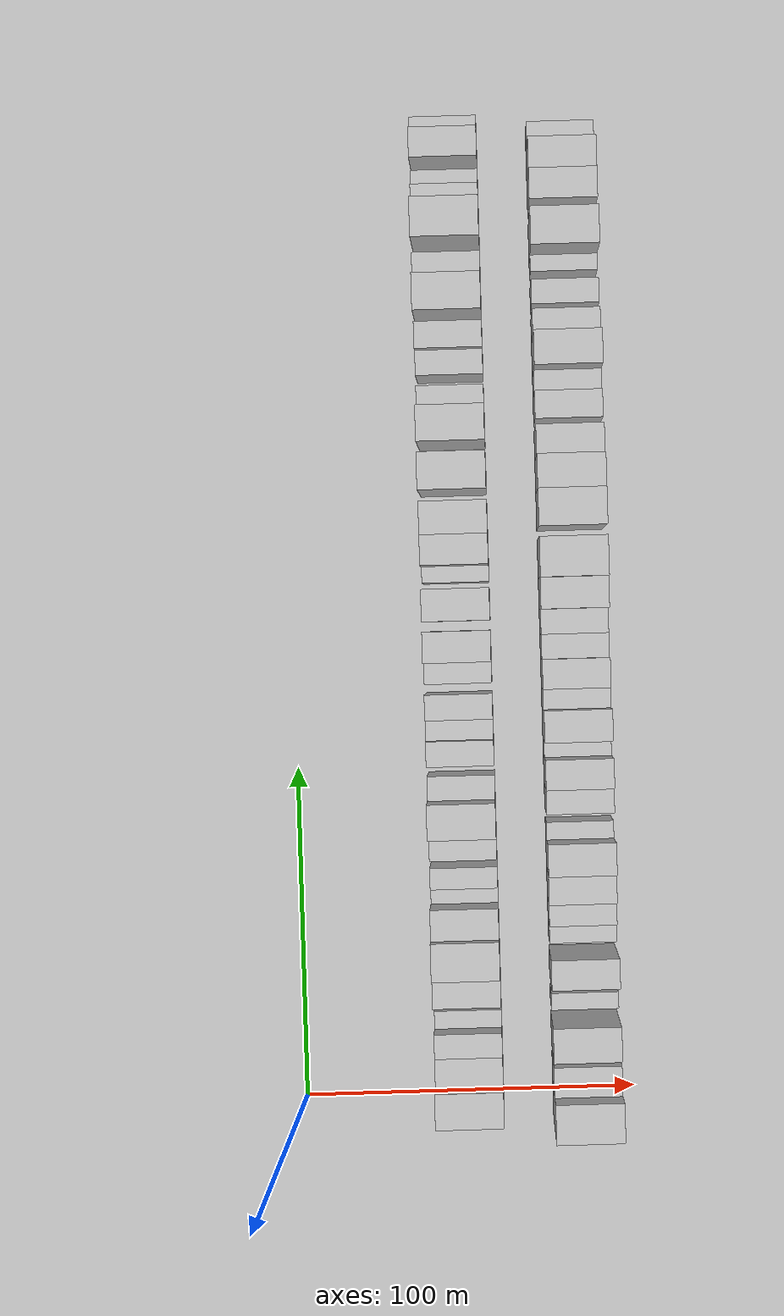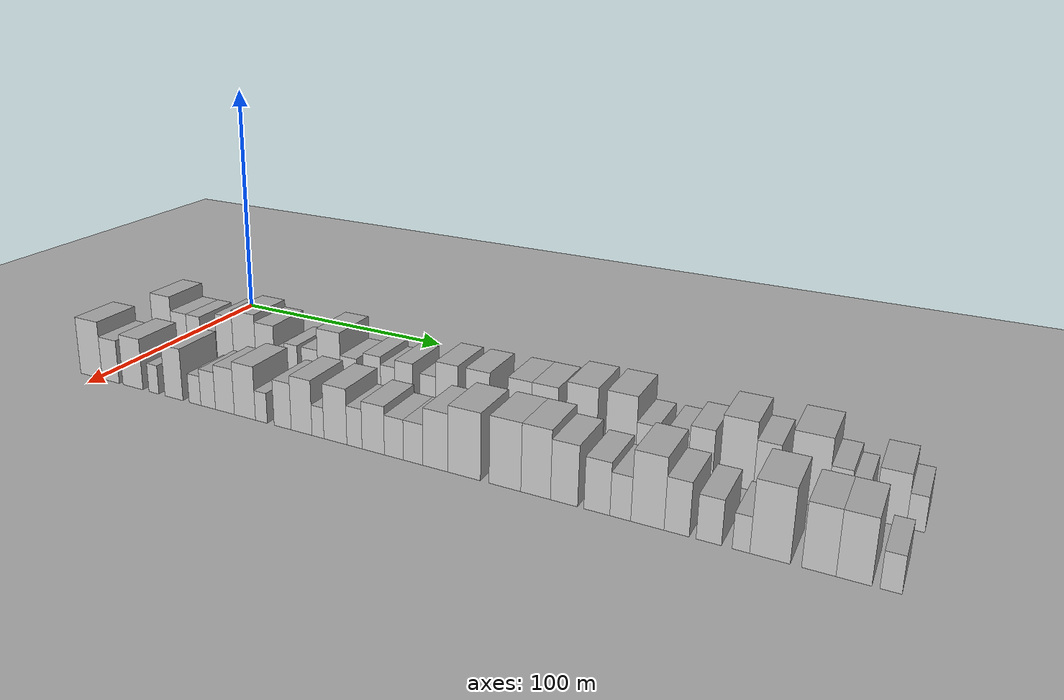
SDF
<sdf version="1.6">
 <world name="default">
  <include><name>ground_plane_1</name><uri>model://HANNAS_ground_plane</uri></include>
  <include>
   <name>ground_plane_2</name>
   <uri>model://HANNAS_ground_plane</uri>
   <pose>100 0 0  0 0 0</pose>
  </include>
  <model name="building_34">
   <static>1</static>
   <pose>50.0000 1.5610 0 0.000000 0.000000 0.000000</pose>
   <link name="link">
    <pose>0 0 12.00 0 0 0</pose>
    <collision name="collision"><geometry><box><size>20.0000 10.4904 24.0000</size></box></geometry></collision>
    <visual name="visual">
     <cast_shadows>0</cast_shadows>
     <geometry><box><size>20.0000 10.4904 24.0000</size></box></geometry>
     <material>
      <script>
       <uri>model://HANNAS_wall/materials/scripts</uri>
       <uri>model://HANNAS_wall/materials/textures</uri>
       <name>vrc/HANNAS_wall</name>
      </script>
     </material>
    </visual>
   </link>
  </model>
  <model name="building_35">
   <static>1</static>
   <pose>50.0000 10.9428 0 0.000000 0.000000 0.000000</pose>
   <link name="link">
    <pose>0 0 9.00 0 0 0</pose>
    <collision name="collision"><geometry><box><size>20.0000 8.2730 18.0000</size></box></geometry></collision>
    <visual name="visual">
     <cast_shadows>0</cast_shadows>
     <geometry><box><size>20.0000 8.2730 18.0000</size></box></geometry>
     <material>
      <script>
       <uri>model://HANNAS_wall/materials/scripts</uri>
       <uri>model://HANNAS_wall/materials/textures</uri>
       <name>vrc/HANNAS_wall</name>
      </script>
     </material>
    </visual>
   </link>
  </model>
  <model name="building_36">
   <static>1</static>
   <pose>50.0000 18.6821 0 0.000000 0.000000 0.000000</pose>
   <link name="link">
    <pose>0 0 9.00 0 0 0</pose>
    <collision name="collision"><geometry><box><size>20.0000 7.2055 18.0000</size></box></geometry></collision>
    <visual name="visual">
     <cast_shadows>0</cast_shadows>
     <geometry><box><size>20.0000 7.2055 18.0000</size></box></geometry>
     <material>
      <script>
       <uri>model://HANNAS_wall/materials/scripts</uri>
       <uri>model://HANNAS_wall/materials/textures</uri>
       <name>vrc/HANNAS_wall</name>
      </script>
     </material>
    </visual>
   </link>
  </model>
  <model name="building_37">
   <static>1</static>
   <pose>50.0000 24.9326 0 0.000000 0.000000 0.000000</pose>
   <link name="link">
    <pose>0 0 6.00 0 0 0</pose>
    <collision name="collision"><geometry><box><size>20.0000 5.2955 12.0000</size></box></geometry></collision>
    <visual name="visual">
     <cast_shadows>0</cast_shadows>
     <geometry><box><size>20.0000 5.2955 12.0000</size></box></geometry>
     <material>
      <script>
       <uri>model://HANNAS_wall/materials/scripts</uri>
       <uri>model://HANNAS_wall/materials/textures</uri>
       <name>vrc/HANNAS_wall</name>
      </script>
     </material>
    </visual>
   </link>
  </model>
  <model name="building_38">
   <static>1</static>
   <pose>50.0000 34.8326 0 0.000000 0.000000 0.000000</pose>
   <link name="link">
    <pose>0 0 10.50 0 0 0</pose>
    <collision name="collision"><geometry><box><size>20.0000 8.5047 21.0000</size></box></geometry></collision>
    <visual name="visual">
     <cast_shadows>0</cast_shadows>
     <geometry><box><size>20.0000 8.5047 21.0000</size></box></geometry>
     <material>
      <script>
       <uri>model://HANNAS_wall/materials/scripts</uri>
       <uri>model://HANNAS_wall/materials/textures</uri>
       <name>vrc/HANNAS_wall</name>
      </script>
     </material>
    </visual>
   </link>
  </model>
  <model name="building_39">
   <static>1</static>
   <pose>50.0000 44.6915 0 0.000000 0.000000 0.000000</pose>
   <link name="link">
    <pose>0 0 12.00 0 0 0</pose>
    <collision name="collision"><geometry><box><size>20.0000 11.2131 24.0000</size></box></geometry></collision>
    <visual name="visual">
     <cast_shadows>0</cast_shadows>
     <geometry><box><size>20.0000 11.2131 24.0000</size></box></geometry>
     <material>
      <script>
       <uri>model://HANNAS_wall/materials/scripts</uri>
       <uri>model://HANNAS_wall/materials/textures</uri>
       <name>vrc/HANNAS_wall</name>
      </script>
     </material>
    </visual>
   </link>
  </model>
  <model name="building_40">
   <static>1</static>
   <pose>50.0000 54.8790 0 0.000000 0.000000 0.000000</pose>
   <link name="link">
    <pose>0 0 10.50 0 0 0</pose>
    <collision name="collision"><geometry><box><size>20.0000 9.1619 21.0000</size></box></geometry></collision>
    <visual name="visual">
     <cast_shadows>0</cast_shadows>
     <geometry><box><size>20.0000 9.1619 21.0000</size></box></geometry>
     <material>
      <script>
       <uri>model://HANNAS_wall/materials/scripts</uri>
       <uri>model://HANNAS_wall/materials/textures</uri>
       <name>vrc/HANNAS_wall</name>
      </script>
     </material>
    </visual>
   </link>
  </model>
  <model name="building_41">
   <static>1</static>
   <pose>50.0000 61.8659 0 0.000000 0.000000 0.000000</pose>
   <link name="link">
    <pose>0 0 6.00 0 0 0</pose>
    <collision name="collision"><geometry><box><size>20.0000 4.8118 12.0000</size></box></geometry></collision>
    <visual name="visual">
     <cast_shadows>0</cast_shadows>
     <geometry><box><size>20.0000 4.8118 12.0000</size></box></geometry>
     <material>
      <script>
       <uri>model://HANNAS_wall/materials/scripts</uri>
       <uri>model://HANNAS_wall/materials/textures</uri>
       <name>vrc/HANNAS_wall</name>
      </script>
     </material>
    </visual>
   </link>
  </model>
  <model name="building_42">
   <static>1</static>
   <pose>50.0000 67.4363 0 0.000000 0.000000 0.000000</pose>
   <link name="link">
    <pose>0 0 7.50 0 0 0</pose>
    <collision name="collision"><geometry><box><size>20.0000 6.3291 15.0000</size></box></geometry></collision>
    <visual name="visual">
     <cast_shadows>0</cast_shadows>
     <geometry><box><size>20.0000 6.3291 15.0000</size></box></geometry>
     <material>
      <script>
       <uri>model://HANNAS_wall/materials/scripts</uri>
       <uri>model://HANNAS_wall/materials/textures</uri>
       <name>vrc/HANNAS_wall</name>
      </script>
     </material>
    </visual>
   </link>
  </model>
  <model name="building_43">
   <static>1</static>
   <pose>50.0000 76.3273 0 0.000000 0.000000 0.000000</pose>
   <link name="link">
    <pose>0 0 7.50 0 0 0</pose>
    <collision name="collision"><geometry><box><size>20.0000 7.4528 15.0000</size></box></geometry></collision>
    <visual name="visual">
     <cast_shadows>0</cast_shadows>
     <geometry><box><size>20.0000 7.4528 15.0000</size></box></geometry>
     <material>
      <script>
       <uri>model://HANNAS_wall/materials/scripts</uri>
       <uri>model://HANNAS_wall/materials/textures</uri>
       <name>vrc/HANNAS_wall</name>
      </script>
     </material>
    </visual>
   </link>
  </model>
  <model name="building_44">
   <static>1</static>
   <pose>50.0000 85.2699 0 0.000000 0.000000 0.000000</pose>
   <link name="link">
    <pose>0 0 12.00 0 0 0</pose>
    <collision name="collision"><geometry><box><size>20.0000 10.4325 24.0000</size></box></geometry></collision>
    <visual name="visual">
     <cast_shadows>0</cast_shadows>
     <geometry><box><size>20.0000 10.4325 24.0000</size></box></geometry>
     <material>
      <script>
       <uri>model://HANNAS_wall/materials/scripts</uri>
       <uri>model://HANNAS_wall/materials/textures</uri>
       <name>vrc/HANNAS_wall</name>
      </script>
     </material>
    </visual>
   </link>
  </model>
  <model name="building_45">
   <static>1</static>
   <pose>50.0000 94.1355 0 0.000000 0.000000 0.000000</pose>
   <link name="link">
    <pose>0 0 7.50 0 0 0</pose>
    <collision name="collision"><geometry><box><size>20.0000 7.2986 15.0000</size></box></geometry></collision>
    <visual name="visual">
     <cast_shadows>0</cast_shadows>
     <geometry><box><size>20.0000 7.2986 15.0000</size></box></geometry>
     <material>
      <script>
       <uri>model://HANNAS_wall/materials/scripts</uri>
       <uri>model://HANNAS_wall/materials/textures</uri>
       <name>vrc/HANNAS_wall</name>
      </script>
     </material>
    </visual>
   </link>
  </model>
  <model name="building_46">
   <static>1</static>
   <pose>50.0000 104.5383 0 0.000000 0.000000 0.000000</pose>
   <link name="link">
    <pose>0 0 9.00 0 0 0</pose>
    <collision name="collision"><geometry><box><size>20.0000 7.5070 18.0000</size></box></geometry></collision>
    <visual name="visual">
     <cast_shadows>0</cast_shadows>
     <geometry><box><size>20.0000 7.5070 18.0000</size></box></geometry>
     <material>
      <script>
       <uri>model://HANNAS_wall/materials/scripts</uri>
       <uri>model://HANNAS_wall/materials/textures</uri>
       <name>vrc/HANNAS_wall</name>
      </script>
     </material>
    </visual>
   </link>
  </model>
  <model name="building_47">
   <static>1</static>
   <pose>50.0000 111.3633 0 0.000000 0.000000 0.000000</pose>
   <link name="link">
    <pose>0 0 7.50 0 0 0</pose>
    <collision name="collision"><geometry><box><size>20.0000 6.1431 15.0000</size></box></geometry></collision>
    <visual name="visual">
     <cast_shadows>0</cast_shadows>
     <geometry><box><size>20.0000 6.1431 15.0000</size></box></geometry>
     <material>
      <script>
       <uri>model://HANNAS_wall/materials/scripts</uri>
       <uri>model://HANNAS_wall/materials/textures</uri>
       <name>vrc/HANNAS_wall</name>
      </script>
     </material>
    </visual>
   </link>
  </model>
  <model name="building_48">
   <static>1</static>
   <pose>50.0000 118.2187 0 0.000000 0.000000 0.000000</pose>
   <link name="link">
    <pose>0 0 9.00 0 0 0</pose>
    <collision name="collision"><geometry><box><size>20.0000 7.5677 18.0000</size></box></geometry></collision>
    <visual name="visual">
     <cast_shadows>0</cast_shadows>
     <geometry><box><size>20.0000 7.5677 18.0000</size></box></geometry>
     <material>
      <script>
       <uri>model://HANNAS_wall/materials/scripts</uri>
       <uri>model://HANNAS_wall/materials/textures</uri>
       <name>vrc/HANNAS_wall</name>
      </script>
     </material>
    </visual>
   </link>
  </model>
  <model name="building_49">
   <static>1</static>
   <pose>50.0000 128.1905 0 0.000000 0.000000 0.000000</pose>
   <link name="link">
    <pose>0 0 7.50 0 0 0</pose>
    <collision name="collision"><geometry><box><size>20.0000 6.3759 15.0000</size></box></geometry></collision>
    <visual name="visual">
     <cast_shadows>0</cast_shadows>
     <geometry><box><size>20.0000 6.3759 15.0000</size></box></geometry>
     <material>
      <script>
       <uri>model://HANNAS_wall/materials/scripts</uri>
       <uri>model://HANNAS_wall/materials/textures</uri>
       <name>vrc/HANNAS_wall</name>
      </script>
     </material>
    </visual>
   </link>
  </model>
  <model name="building_50">
   <static>1</static>
   <pose>50.0000 135.9587 0 0.000000 0.000000 0.000000</pose>
   <link name="link">
    <pose>0 0 10.50 0 0 0</pose>
    <collision name="collision"><geometry><box><size>20.0000 9.1605 21.0000</size></box></geometry></collision>
    <visual name="visual">
     <cast_shadows>0</cast_shadows>
     <geometry><box><size>20.0000 9.1605 21.0000</size></box></geometry>
     <material>
      <script>
       <uri>model://HANNAS_wall/materials/scripts</uri>
       <uri>model://HANNAS_wall/materials/textures</uri>
       <name>vrc/HANNAS_wall</name>
      </script>
     </material>
    </visual>
   </link>
  </model>
  <model name="building_51">
   <static>1</static>
   <pose>50.0000 148.2885 0 0.000000 0.000000 0.000000</pose>
   <link name="link">
    <pose>0 0 10.50 0 0 0</pose>
    <collision name="collision"><geometry><box><size>20.0000 9.4992 21.0000</size></box></geometry></collision>
    <visual name="visual">
     <cast_shadows>0</cast_shadows>
     <geometry><box><size>20.0000 9.4992 21.0000</size></box></geometry>
     <material>
      <script>
       <uri>model://HANNAS_wall/materials/scripts</uri>
       <uri>model://HANNAS_wall/materials/textures</uri>
       <name>vrc/HANNAS_wall</name>
      </script>
     </material>
    </visual>
   </link>
  </model>
  <model name="building_52">
   <static>1</static>
   <pose>50.0000 157.4965 0 0.000000 0.000000 0.000000</pose>
   <link name="link">
    <pose>0 0 6.00 0 0 0</pose>
    <collision name="collision"><geometry><box><size>20.0000 4.9168 12.0000</size></box></geometry></collision>
    <visual name="visual">
     <cast_shadows>0</cast_shadows>
     <geometry><box><size>20.0000 4.9168 12.0000</size></box></geometry>
     <material>
      <script>
       <uri>model://HANNAS_wall/materials/scripts</uri>
       <uri>model://HANNAS_wall/materials/textures</uri>
       <name>vrc/HANNAS_wall</name>
      </script>
     </material>
    </visual>
   </link>
  </model>
  <model name="building_53">
   <static>1</static>
   <pose>50.0000 164.4559 0 0.000000 0.000000 0.000000</pose>
   <link name="link">
    <pose>0 0 10.50 0 0 0</pose>
    <collision name="collision"><geometry><box><size>20.0000 9.0020 21.0000</size></box></geometry></collision>
    <visual name="visual">
     <cast_shadows>0</cast_shadows>
     <geometry><box><size>20.0000 9.0020 21.0000</size></box></geometry>
     <material>
      <script>
       <uri>model://HANNAS_wall/materials/scripts</uri>
       <uri>model://HANNAS_wall/materials/textures</uri>
       <name>vrc/HANNAS_wall</name>
      </script>
     </material>
    </visual>
   </link>
  </model>
  <model name="building_54">
   <static>1</static>
   <pose>50.0000 173.8521 0 0.000000 0.000000 0.000000</pose>
   <link name="link">
    <pose>0 0 10.50 0 0 0</pose>
    <collision name="collision"><geometry><box><size>20.0000 9.7904 21.0000</size></box></geometry></collision>
    <visual name="visual">
     <cast_shadows>0</cast_shadows>
     <geometry><box><size>20.0000 9.7904 21.0000</size></box></geometry>
     <material>
      <script>
       <uri>model://HANNAS_wall/materials/scripts</uri>
       <uri>model://HANNAS_wall/materials/textures</uri>
       <name>vrc/HANNAS_wall</name>
      </script>
     </material>
    </visual>
   </link>
  </model>
  <model name="building_55">
   <static>1</static>
   <pose>50.0000 187.2806 0 0.000000 0.000000 0.000000</pose>
   <link name="link">
    <pose>0 0 12.00 0 0 0</pose>
    <collision name="collision"><geometry><box><size>20.0000 11.0665 24.0000</size></box></geometry></collision>
    <visual name="visual">
     <cast_shadows>0</cast_shadows>
     <geometry><box><size>20.0000 11.0665 24.0000</size></box></geometry>
     <material>
      <script>
       <uri>model://HANNAS_wall/materials/scripts</uri>
       <uri>model://HANNAS_wall/materials/textures</uri>
       <name>vrc/HANNAS_wall</name>
      </script>
     </material>
    </visual>
   </link>
  </model>
  <model name="building_56">
   <static>1</static>
   <pose>50.0000 201.0953 0 0.000000 0.000000 0.000000</pose>
   <link name="link">
    <pose>0 0 12.00 0 0 0</pose>
    <collision name="collision"><geometry><box><size>20.0000 10.5628 24.0000</size></box></geometry></collision>
    <visual name="visual">
     <cast_shadows>0</cast_shadows>
     <geometry><box><size>20.0000 10.5628 24.0000</size></box></geometry>
     <material>
      <script>
       <uri>model://HANNAS_wall/materials/scripts</uri>
       <uri>model://HANNAS_wall/materials/textures</uri>
       <name>vrc/HANNAS_wall</name>
      </script>
     </material>
    </visual>
   </link>
  </model>
  <model name="building_57">
   <static>1</static>
   <pose>50.0000 209.8972 0 0.000000 0.000000 0.000000</pose>
   <link name="link">
    <pose>0 0 7.50 0 0 0</pose>
    <collision name="collision"><geometry><box><size>20.0000 7.0411 15.0000</size></box></geometry></collision>
    <visual name="visual">
     <cast_shadows>0</cast_shadows>
     <geometry><box><size>20.0000 7.0411 15.0000</size></box></geometry>
     <material>
      <script>
       <uri>model://HANNAS_wall/materials/scripts</uri>
       <uri>model://HANNAS_wall/materials/textures</uri>
       <name>vrc/HANNAS_wall</name>
      </script>
     </material>
    </visual>
   </link>
  </model>
  <model name="building_58">
   <static>1</static>
   <pose>50.0000 220.1323 0 0.000000 0.000000 0.000000</pose>
   <link name="link">
    <pose>0 0 7.50 0 0 0</pose>
    <collision name="collision"><geometry><box><size>20.0000 7.4291 15.0000</size></box></geometry></collision>
    <visual name="visual">
     <cast_shadows>0</cast_shadows>
     <geometry><box><size>20.0000 7.4291 15.0000</size></box></geometry>
     <material>
      <script>
       <uri>model://HANNAS_wall/materials/scripts</uri>
       <uri>model://HANNAS_wall/materials/textures</uri>
       <name>vrc/HANNAS_wall</name>
      </script>
     </material>
    </visual>
   </link>
  </model>
  <model name="building_59">
   <static>1</static>
   <pose>50.0000 227.8187 0 0.000000 0.000000 0.000000</pose>
   <link name="link">
    <pose>0 0 9.00 0 0 0</pose>
    <collision name="collision"><geometry><box><size>20.0000 7.9437 18.0000</size></box></geometry></collision>
    <visual name="visual">
     <cast_shadows>0</cast_shadows>
     <geometry><box><size>20.0000 7.9437 18.0000</size></box></geometry>
     <material>
      <script>
       <uri>model://HANNAS_wall/materials/scripts</uri>
       <uri>model://HANNAS_wall/materials/textures</uri>
       <name>vrc/HANNAS_wall</name>
      </script>
     </material>
    </visual>
   </link>
  </model>
  <model name="building_60">
   <static>1</static>
   <pose>50.0000 239.2063 0 0.000000 0.000000 0.000000</pose>
   <link name="link">
    <pose>0 0 12.00 0 0 0</pose>
    <collision name="collision"><geometry><box><size>20.0000 10.8313 24.0000</size></box></geometry></collision>
    <visual name="visual">
     <cast_shadows>0</cast_shadows>
     <geometry><box><size>20.0000 10.8313 24.0000</size></box></geometry>
     <material>
      <script>
       <uri>model://HANNAS_wall/materials/scripts</uri>
       <uri>model://HANNAS_wall/materials/textures</uri>
       <name>vrc/HANNAS_wall</name>
      </script>
     </material>
    </visual>
   </link>
  </model>
  <model name="building_61">
   <static>1</static>
   <pose>50.0000 248.3287 0 0.000000 0.000000 0.000000</pose>
   <link name="link">
    <pose>0 0 9.00 0 0 0</pose>
    <collision name="collision"><geometry><box><size>20.0000 7.4135 18.0000</size></box></geometry></collision>
    <visual name="visual">
     <cast_shadows>0</cast_shadows>
     <geometry><box><size>20.0000 7.4135 18.0000</size></box></geometry>
     <material>
      <script>
       <uri>model://HANNAS_wall/materials/scripts</uri>
       <uri>model://HANNAS_wall/materials/textures</uri>
       <name>vrc/HANNAS_wall</name>
      </script>
     </material>
    </visual>
   </link>
  </model>
  <model name="building_62">
   <static>1</static>
   <pose>50.0000 260.8437 0 0.000000 0.000000 0.000000</pose>
   <link name="link">
    <pose>0 0 12.00 0 0 0</pose>
    <collision name="collision"><geometry><box><size>20.0000 11.6165 24.0000</size></box></geometry></collision>
    <visual name="visual">
     <cast_shadows>0</cast_shadows>
     <geometry><box><size>20.0000 11.6165 24.0000</size></box></geometry>
     <material>
      <script>
       <uri>model://HANNAS_wall/materials/scripts</uri>
       <uri>model://HANNAS_wall/materials/textures</uri>
       <name>vrc/HANNAS_wall</name>
      </script>
     </material>
    </visual>
   </link>
  </model>
  <model name="building_63">
   <static>1</static>
   <pose>50.0000 269.8460 0 0.000000 0.000000 0.000000</pose>
   <link name="link">
    <pose>0 0 7.50 0 0 0</pose>
    <collision name="collision"><geometry><box><size>20.0000 6.3880 15.0000</size></box></geometry></collision>
    <visual name="visual">
     <cast_shadows>0</cast_shadows>
     <geometry><box><size>20.0000 6.3880 15.0000</size></box></geometry>
     <material>
      <script>
       <uri>model://HANNAS_wall/materials/scripts</uri>
       <uri>model://HANNAS_wall/materials/textures</uri>
       <name>vrc/HANNAS_wall</name>
      </script>
     </material>
    </visual>
   </link>
  </model>
  <model name="building_64">
   <static>1</static>
   <pose>50.0000 275.5295 0 0.000000 0.000000 0.000000</pose>
   <link name="link">
    <pose>0 0 6.00 0 0 0</pose>
    <collision name="collision"><geometry><box><size>20.0000 4.9792 12.0000</size></box></geometry></collision>
    <visual name="visual">
     <cast_shadows>0</cast_shadows>
     <geometry><box><size>20.0000 4.9792 12.0000</size></box></geometry>
     <material>
      <script>
       <uri>model://HANNAS_wall/materials/scripts</uri>
       <uri>model://HANNAS_wall/materials/textures</uri>
       <name>vrc/HANNAS_wall</name>
      </script>
     </material>
    </visual>
   </link>
  </model>
  <model name="building_65">
   <static>1</static>
   <pose>50.0000 284.4295 0 0.000000 0.000000 0.000000</pose>
   <link name="link">
    <pose>0 0 9.00 0 0 0</pose>
    <collision name="collision"><geometry><box><size>20.0000 8.8207 18.0000</size></box></geometry></collision>
    <visual name="visual">
     <cast_shadows>0</cast_shadows>
     <geometry><box><size>20.0000 8.8207 18.0000</size></box></geometry>
     <material>
      <script>
       <uri>model://HANNAS_wall/materials/scripts</uri>
       <uri>model://HANNAS_wall/materials/textures</uri>
       <name>vrc/HANNAS_wall</name>
      </script>
     </material>
    </visual>
   </link>
  </model>
  <model name="building_66">
   <static>1</static>
   <pose>50.0000 291.3864 0 0.000000 0.000000 0.000000</pose>
   <link name="link">
    <pose>0 0 6.00 0 0 0</pose>
    <collision name="collision"><geometry><box><size>20.0000 5.0931 12.0000</size></box></geometry></collision>
    <visual name="visual">
     <cast_shadows>0</cast_shadows>
     <geometry><box><size>20.0000 5.0931 12.0000</size></box></geometry>
     <material>
      <script>
       <uri>model://HANNAS_wall/materials/scripts</uri>
       <uri>model://HANNAS_wall/materials/textures</uri>
       <name>vrc/HANNAS_wall</name>
      </script>
     </material>
    </visual>
   </link>
  </model>
  <model name="building_101">
   <static>1</static>
   <pose>85.0000 -3.1474 0 0.000000 0.000000 0.000000</pose>
   <link name="link">
    <pose>0 0 12.00 0 0 0</pose>
    <collision name="collision"><geometry><box><size>20.0000 11.6512 24.0000</size></box></geometry></collision>
    <visual name="visual">
     <cast_shadows>0</cast_shadows>
     <geometry><box><size>20.0000 11.6512 24.0000</size></box></geometry>
     <material>
      <script>
       <uri>model://HANNAS_wall/materials/scripts</uri>
       <uri>model://HANNAS_wall/materials/textures</uri>
       <name>vrc/HANNAS_wall</name>
      </script>
     </material>
    </visual>
   </link>
  </model>
  <model name="building_102">
   <static>1</static>
   <pose>85.0000 7.1366 0 0.000000 0.000000 0.000000</pose>
   <link name="link">
    <pose>0 0 9.00 0 0 0</pose>
    <collision name="collision"><geometry><box><size>20.0000 8.9169 18.0000</size></box></geometry></collision>
    <visual name="visual">
     <cast_shadows>0</cast_shadows>
     <geometry><box><size>20.0000 8.9169 18.0000</size></box></geometry>
     <material>
      <script>
       <uri>model://HANNAS_wall/materials/scripts</uri>
       <uri>model://HANNAS_wall/materials/textures</uri>
       <name>vrc/HANNAS_wall</name>
      </script>
     </material>
    </visual>
   </link>
  </model>
  <model name="building_103">
   <static>1</static>
   <pose>85.0000 18.7355 0 0.000000 0.000000 0.000000</pose>
   <link name="link">
    <pose>0 0 10.50 0 0 0</pose>
    <collision name="collision"><geometry><box><size>20.0000 10.2808 21.0000</size></box></geometry></collision>
    <visual name="visual">
     <cast_shadows>0</cast_shadows>
     <geometry><box><size>20.0000 10.2808 21.0000</size></box></geometry>
     <material>
      <script>
       <uri>model://HANNAS_wall/materials/scripts</uri>
       <uri>model://HANNAS_wall/materials/textures</uri>
       <name>vrc/HANNAS_wall</name>
      </script>
     </material>
    </visual>
   </link>
  </model>
  <model name="building_104">
   <static>1</static>
   <pose>85.0000 29.3926 0 0.000000 0.000000 0.000000</pose>
   <link name="link">
    <pose>0 0 6.00 0 0 0</pose>
    <collision name="collision"><geometry><box><size>20.0000 5.0334 12.0000</size></box></geometry></collision>
    <visual name="visual">
     <cast_shadows>0</cast_shadows>
     <geometry><box><size>20.0000 5.0334 12.0000</size></box></geometry>
     <material>
      <script>
       <uri>model://HANNAS_wall/materials/scripts</uri>
       <uri>model://HANNAS_wall/materials/textures</uri>
       <name>vrc/HANNAS_wall</name>
      </script>
     </material>
    </visual>
   </link>
  </model>
  <model name="building_105">
   <static>1</static>
   <pose>85.0000 39.3235 0 0.000000 0.000000 0.000000</pose>
   <link name="link">
    <pose>0 0 10.50 0 0 0</pose>
    <collision name="collision"><geometry><box><size>20.0000 8.8284 21.0000</size></box></geometry></collision>
    <visual name="visual">
     <cast_shadows>0</cast_shadows>
     <geometry><box><size>20.0000 8.8284 21.0000</size></box></geometry>
     <material>
      <script>
       <uri>model://HANNAS_wall/materials/scripts</uri>
       <uri>model://HANNAS_wall/materials/textures</uri>
       <name>vrc/HANNAS_wall</name>
      </script>
     </material>
    </visual>
   </link>
  </model>
  <model name="building_106">
   <static>1</static>
   <pose>85.0000 49.5543 0 0.000000 0.000000 0.000000</pose>
   <link name="link">
    <pose>0 0 6.00 0 0 0</pose>
    <collision name="collision"><geometry><box><size>20.0000 5.6334 12.0000</size></box></geometry></collision>
    <visual name="visual">
     <cast_shadows>0</cast_shadows>
     <geometry><box><size>20.0000 5.6334 12.0000</size></box></geometry>
     <material>
      <script>
       <uri>model://HANNAS_wall/materials/scripts</uri>
       <uri>model://HANNAS_wall/materials/textures</uri>
       <name>vrc/HANNAS_wall</name>
      </script>
     </material>
    </visual>
   </link>
  </model>
  <model name="building_107">
   <static>1</static>
   <pose>85.0000 55.8178 0 0.000000 0.000000 0.000000</pose>
   <link name="link">
    <pose>0 0 7.50 0 0 0</pose>
    <collision name="collision"><geometry><box><size>20.0000 6.8936 15.0000</size></box></geometry></collision>
    <visual name="visual">
     <cast_shadows>0</cast_shadows>
     <geometry><box><size>20.0000 6.8936 15.0000</size></box></geometry>
     <material>
      <script>
       <uri>model://HANNAS_wall/materials/scripts</uri>
       <uri>model://HANNAS_wall/materials/textures</uri>
       <name>vrc/HANNAS_wall</name>
      </script>
     </material>
    </visual>
   </link>
  </model>
  <model name="building_108">
   <static>1</static>
   <pose>85.0000 63.6463 0 0.000000 0.000000 0.000000</pose>
   <link name="link">
    <pose>0 0 9.00 0 0 0</pose>
    <collision name="collision"><geometry><box><size>20.0000 8.7634 18.0000</size></box></geometry></collision>
    <visual name="visual">
     <cast_shadows>0</cast_shadows>
     <geometry><box><size>20.0000 8.7634 18.0000</size></box></geometry>
     <material>
      <script>
       <uri>model://HANNAS_wall/materials/scripts</uri>
       <uri>model://HANNAS_wall/materials/textures</uri>
       <name>vrc/HANNAS_wall</name>
      </script>
     </material>
    </visual>
   </link>
  </model>
  <model name="building_109">
   <static>1</static>
   <pose>85.0000 72.8059 0 0.000000 0.000000 0.000000</pose>
   <link name="link">
    <pose>0 0 10.50 0 0 0</pose>
    <collision name="collision"><geometry><box><size>20.0000 9.5558 21.0000</size></box></geometry></collision>
    <visual name="visual">
     <cast_shadows>0</cast_shadows>
     <geometry><box><size>20.0000 9.5558 21.0000</size></box></geometry>
     <material>
      <script>
       <uri>model://HANNAS_wall/materials/scripts</uri>
       <uri>model://HANNAS_wall/materials/textures</uri>
       <name>vrc/HANNAS_wall</name>
      </script>
     </material>
    </visual>
   </link>
  </model>
  <model name="building_110">
   <static>1</static>
   <pose>85.0000 80.2214 0 0.000000 0.000000 0.000000</pose>
   <link name="link">
    <pose>0 0 6.00 0 0 0</pose>
    <collision name="collision"><geometry><box><size>20.0000 5.2754 12.0000</size></box></geometry></collision>
    <visual name="visual">
     <cast_shadows>0</cast_shadows>
     <geometry><box><size>20.0000 5.2754 12.0000</size></box></geometry>
     <material>
      <script>
       <uri>model://HANNAS_wall/materials/scripts</uri>
       <uri>model://HANNAS_wall/materials/textures</uri>
       <name>vrc/HANNAS_wall</name>
      </script>
     </material>
    </visual>
   </link>
  </model>
  <model name="building_111">
   <static>1</static>
   <pose>85.0000 89.5800 0 0.000000 0.000000 0.000000</pose>
   <link name="link">
    <pose>0 0 9.00 0 0 0</pose>
    <collision name="collision"><geometry><box><size>20.0000 7.4417 18.0000</size></box></geometry></collision>
    <visual name="visual">
     <cast_shadows>0</cast_shadows>
     <geometry><box><size>20.0000 7.4417 18.0000</size></box></geometry>
     <material>
      <script>
       <uri>model://HANNAS_wall/materials/scripts</uri>
       <uri>model://HANNAS_wall/materials/textures</uri>
       <name>vrc/HANNAS_wall</name>
      </script>
     </material>
    </visual>
   </link>
  </model>
  <model name="building_112">
   <static>1</static>
   <pose>85.0000 97.7426 0 0.000000 0.000000 0.000000</pose>
   <link name="link">
    <pose>0 0 10.50 0 0 0</pose>
    <collision name="collision"><geometry><box><size>20.0000 8.8835 21.0000</size></box></geometry></collision>
    <visual name="visual">
     <cast_shadows>0</cast_shadows>
     <geometry><box><size>20.0000 8.8835 21.0000</size></box></geometry>
     <material>
      <script>
       <uri>model://HANNAS_wall/materials/scripts</uri>
       <uri>model://HANNAS_wall/materials/textures</uri>
       <name>vrc/HANNAS_wall</name>
      </script>
     </material>
    </visual>
   </link>
  </model>
  <model name="building_113">
   <static>1</static>
   <pose>85.0000 104.6639 0 0.000000 0.000000 0.000000</pose>
   <link name="link">
    <pose>0 0 6.00 0 0 0</pose>
    <collision name="collision"><geometry><box><size>20.0000 4.9592 12.0000</size></box></geometry></collision>
    <visual name="visual">
     <cast_shadows>0</cast_shadows>
     <geometry><box><size>20.0000 4.9592 12.0000</size></box></geometry>
     <material>
      <script>
       <uri>model://HANNAS_wall/materials/scripts</uri>
       <uri>model://HANNAS_wall/materials/textures</uri>
       <name>vrc/HANNAS_wall</name>
      </script>
     </material>
    </visual>
   </link>
  </model>
  <model name="building_114">
   <static>1</static>
   <pose>85.0000 111.8673 0 0.000000 0.000000 0.000000</pose>
   <link name="link">
    <pose>0 0 10.50 0 0 0</pose>
    <collision name="collision"><geometry><box><size>20.0000 9.4475 21.0000</size></box></geometry></collision>
    <visual name="visual">
     <cast_shadows>0</cast_shadows>
     <geometry><box><size>20.0000 9.4475 21.0000</size></box></geometry>
     <material>
      <script>
       <uri>model://HANNAS_wall/materials/scripts</uri>
       <uri>model://HANNAS_wall/materials/textures</uri>
       <name>vrc/HANNAS_wall</name>
      </script>
     </material>
    </visual>
   </link>
  </model>
  <model name="building_115">
   <static>1</static>
   <pose>85.0000 119.6418 0 0.000000 0.000000 0.000000</pose>
   <link name="link">
    <pose>0 0 7.50 0 0 0</pose>
    <collision name="collision"><geometry><box><size>20.0000 6.1016 15.0000</size></box></geometry></collision>
    <visual name="visual">
     <cast_shadows>0</cast_shadows>
     <geometry><box><size>20.0000 6.1016 15.0000</size></box></geometry>
     <material>
      <script>
       <uri>model://HANNAS_wall/materials/scripts</uri>
       <uri>model://HANNAS_wall/materials/textures</uri>
       <name>vrc/HANNAS_wall</name>
      </script>
     </material>
    </visual>
   </link>
  </model>
  <model name="building_116">
   <static>1</static>
   <pose>85.0000 127.1039 0 0.000000 0.000000 0.000000</pose>
   <link name="link">
    <pose>0 0 9.00 0 0 0</pose>
    <collision name="collision"><geometry><box><size>20.0000 8.8225 18.0000</size></box></geometry></collision>
    <visual name="visual">
     <cast_shadows>0</cast_shadows>
     <geometry><box><size>20.0000 8.8225 18.0000</size></box></geometry>
     <material>
      <script>
       <uri>model://HANNAS_wall/materials/scripts</uri>
       <uri>model://HANNAS_wall/materials/textures</uri>
       <name>vrc/HANNAS_wall</name>
      </script>
     </material>
    </visual>
   </link>
  </model>
  <model name="building_117">
   <static>1</static>
   <pose>85.0000 135.1841 0 0.000000 0.000000 0.000000</pose>
   <link name="link">
    <pose>0 0 7.50 0 0 0</pose>
    <collision name="collision"><geometry><box><size>20.0000 7.3379 15.0000</size></box></geometry></collision>
    <visual name="visual">
     <cast_shadows>0</cast_shadows>
     <geometry><box><size>20.0000 7.3379 15.0000</size></box></geometry>
     <material>
      <script>
       <uri>model://HANNAS_wall/materials/scripts</uri>
       <uri>model://HANNAS_wall/materials/textures</uri>
       <name>vrc/HANNAS_wall</name>
      </script>
     </material>
    </visual>
   </link>
  </model>
  <model name="building_118">
   <static>1</static>
   <pose>85.0000 142.5645 0 0.000000 0.000000 0.000000</pose>
   <link name="link">
    <pose>0 0 7.50 0 0 0</pose>
    <collision name="collision"><geometry><box><size>20.0000 7.4228 15.0000</size></box></geometry></collision>
    <visual name="visual">
     <cast_shadows>0</cast_shadows>
     <geometry><box><size>20.0000 7.4228 15.0000</size></box></geometry>
     <material>
      <script>
       <uri>model://HANNAS_wall/materials/scripts</uri>
       <uri>model://HANNAS_wall/materials/textures</uri>
       <name>vrc/HANNAS_wall</name>
      </script>
     </material>
    </visual>
   </link>
  </model>
  <model name="building_119">
   <static>1</static>
   <pose>85.0000 150.9078 0 0.000000 0.000000 0.000000</pose>
   <link name="link">
    <pose>0 0 10.50 0 0 0</pose>
    <collision name="collision"><geometry><box><size>20.0000 9.2638 21.0000</size></box></geometry></collision>
    <visual name="visual">
     <cast_shadows>0</cast_shadows>
     <geometry><box><size>20.0000 9.2638 21.0000</size></box></geometry>
     <material>
      <script>
       <uri>model://HANNAS_wall/materials/scripts</uri>
       <uri>model://HANNAS_wall/materials/textures</uri>
       <name>vrc/HANNAS_wall</name>
      </script>
     </material>
    </visual>
   </link>
  </model>
  <model name="building_120">
   <static>1</static>
   <pose>85.0000 161.4312 0 0.000000 0.000000 0.000000</pose>
   <link name="link">
    <pose>0 0 12.00 0 0 0</pose>
    <collision name="collision"><geometry><box><size>20.0000 11.7831 24.0000</size></box></geometry></collision>
    <visual name="visual">
     <cast_shadows>0</cast_shadows>
     <geometry><box><size>20.0000 11.7831 24.0000</size></box></geometry>
     <material>
      <script>
       <uri>model://HANNAS_wall/materials/scripts</uri>
       <uri>model://HANNAS_wall/materials/textures</uri>
       <name>vrc/HANNAS_wall</name>
      </script>
     </material>
    </visual>
   </link>
  </model>
  <model name="building_121">
   <static>1</static>
   <pose>85.0000 175.8334 0 0.000000 0.000000 0.000000</pose>
   <link name="link">
    <pose>0 0 12.00 0 0 0</pose>
    <collision name="collision"><geometry><box><size>20.0000 11.0214 24.0000</size></box></geometry></collision>
    <visual name="visual">
     <cast_shadows>0</cast_shadows>
     <geometry><box><size>20.0000 11.0214 24.0000</size></box></geometry>
     <material>
      <script>
       <uri>model://HANNAS_wall/materials/scripts</uri>
       <uri>model://HANNAS_wall/materials/textures</uri>
       <name>vrc/HANNAS_wall</name>
      </script>
     </material>
    </visual>
   </link>
  </model>
  <model name="building_122">
   <static>1</static>
   <pose>85.0000 186.3293 0 0.000000 0.000000 0.000000</pose>
   <link name="link">
    <pose>0 0 12.00 0 0 0</pose>
    <collision name="collision"><geometry><box><size>20.0000 9.9703 24.0000</size></box></geometry></collision>
    <visual name="visual">
     <cast_shadows>0</cast_shadows>
     <geometry><box><size>20.0000 9.9703 24.0000</size></box></geometry>
     <material>
      <script>
       <uri>model://HANNAS_wall/materials/scripts</uri>
       <uri>model://HANNAS_wall/materials/textures</uri>
       <name>vrc/HANNAS_wall</name>
      </script>
     </material>
    </visual>
   </link>
  </model>
  <model name="building_123">
   <static>1</static>
   <pose>85.0000 195.7833 0 0.000000 0.000000 0.000000</pose>
   <link name="link">
    <pose>0 0 10.50 0 0 0</pose>
    <collision name="collision"><geometry><box><size>20.0000 8.9377 21.0000</size></box></geometry></collision>
    <visual name="visual">
     <cast_shadows>0</cast_shadows>
     <geometry><box><size>20.0000 8.9377 21.0000</size></box></geometry>
     <material>
      <script>
       <uri>model://HANNAS_wall/materials/scripts</uri>
       <uri>model://HANNAS_wall/materials/textures</uri>
       <name>vrc/HANNAS_wall</name>
      </script>
     </material>
    </visual>
   </link>
  </model>
  <model name="building_124">
   <static>1</static>
   <pose>85.0000 206.3814 0 0.000000 0.000000 0.000000</pose>
   <link name="link">
    <pose>0 0 9.00 0 0 0</pose>
    <collision name="collision"><geometry><box><size>20.0000 8.2585 18.0000</size></box></geometry></collision>
    <visual name="visual">
     <cast_shadows>0</cast_shadows>
     <geometry><box><size>20.0000 8.2585 18.0000</size></box></geometry>
     <material>
      <script>
       <uri>model://HANNAS_wall/materials/scripts</uri>
       <uri>model://HANNAS_wall/materials/textures</uri>
       <name>vrc/HANNAS_wall</name>
      </script>
     </material>
    </visual>
   </link>
  </model>
  <model name="building_125">
   <static>1</static>
   <pose>85.0000 213.7596 0 0.000000 0.000000 0.000000</pose>
   <link name="link">
    <pose>0 0 7.50 0 0 0</pose>
    <collision name="collision"><geometry><box><size>20.0000 6.4979 15.0000</size></box></geometry></collision>
    <visual name="visual">
     <cast_shadows>0</cast_shadows>
     <geometry><box><size>20.0000 6.4979 15.0000</size></box></geometry>
     <material>
      <script>
       <uri>model://HANNAS_wall/materials/scripts</uri>
       <uri>model://HANNAS_wall/materials/textures</uri>
       <name>vrc/HANNAS_wall</name>
      </script>
     </material>
    </visual>
   </link>
  </model>
  <model name="building_126">
   <static>1</static>
   <pose>85.0000 222.0729 0 0.000000 0.000000 0.000000</pose>
   <link name="link">
    <pose>0 0 12.00 0 0 0</pose>
    <collision name="collision"><geometry><box><size>20.0000 10.1287 24.0000</size></box></geometry></collision>
    <visual name="visual">
     <cast_shadows>0</cast_shadows>
     <geometry><box><size>20.0000 10.1287 24.0000</size></box></geometry>
     <material>
      <script>
       <uri>model://HANNAS_wall/materials/scripts</uri>
       <uri>model://HANNAS_wall/materials/textures</uri>
       <name>vrc/HANNAS_wall</name>
      </script>
     </material>
    </visual>
   </link>
  </model>
  <model name="building_127">
   <static>1</static>
   <pose>85.0000 230.8670 0 0.000000 0.000000 0.000000</pose>
   <link name="link">
    <pose>0 0 9.00 0 0 0</pose>
    <collision name="collision"><geometry><box><size>20.0000 7.4594 18.0000</size></box></geometry></collision>
    <visual name="visual">
     <cast_shadows>0</cast_shadows>
     <geometry><box><size>20.0000 7.4594 18.0000</size></box></geometry>
     <material>
      <script>
       <uri>model://HANNAS_wall/materials/scripts</uri>
       <uri>model://HANNAS_wall/materials/textures</uri>
       <name>vrc/HANNAS_wall</name>
      </script>
     </material>
    </visual>
   </link>
  </model>
  <model name="building_128">
   <static>1</static>
   <pose>85.0000 240.2578 0 0.000000 0.000000 0.000000</pose>
   <link name="link">
    <pose>0 0 7.50 0 0 0</pose>
    <collision name="collision"><geometry><box><size>20.0000 7.3223 15.0000</size></box></geometry></collision>
    <visual name="visual">
     <cast_shadows>0</cast_shadows>
     <geometry><box><size>20.0000 7.3223 15.0000</size></box></geometry>
     <material>
      <script>
       <uri>model://HANNAS_wall/materials/scripts</uri>
       <uri>model://HANNAS_wall/materials/textures</uri>
       <name>vrc/HANNAS_wall</name>
      </script>
     </material>
    </visual>
   </link>
  </model>
  <model name="building_129">
   <static>1</static>
   <pose>85.0000 249.3708 0 0.000000 0.000000 0.000000</pose>
   <link name="link">
    <pose>0 0 6.00 0 0 0</pose>
    <collision name="collision"><geometry><box><size>20.0000 4.9038 12.0000</size></box></geometry></collision>
    <visual name="visual">
     <cast_shadows>0</cast_shadows>
     <geometry><box><size>20.0000 4.9038 12.0000</size></box></geometry>
     <material>
      <script>
       <uri>model://HANNAS_wall/materials/scripts</uri>
       <uri>model://HANNAS_wall/materials/textures</uri>
       <name>vrc/HANNAS_wall</name>
      </script>
     </material>
    </visual>
   </link>
  </model>
  <model name="building_130">
   <static>1</static>
   <pose>85.0000 257.3689 0 0.000000 0.000000 0.000000</pose>
   <link name="link">
    <pose>0 0 12.00 0 0 0</pose>
    <collision name="collision"><geometry><box><size>20.0000 11.0924 24.0000</size></box></geometry></collision>
    <visual name="visual">
     <cast_shadows>0</cast_shadows>
     <geometry><box><size>20.0000 11.0924 24.0000</size></box></geometry>
     <material>
      <script>
       <uri>model://HANNAS_wall/materials/scripts</uri>
       <uri>model://HANNAS_wall/materials/textures</uri>
       <name>vrc/HANNAS_wall</name>
      </script>
     </material>
    </visual>
   </link>
  </model>
  <model name="building_131">
   <static>1</static>
   <pose>85.0000 270.4178 0 0.000000 0.000000 0.000000</pose>
   <link name="link">
    <pose>0 0 10.50 0 0 0</pose>
    <collision name="collision"><geometry><box><size>20.0000 9.0053 21.0000</size></box></geometry></collision>
    <visual name="visual">
     <cast_shadows>0</cast_shadows>
     <geometry><box><size>20.0000 9.0053 21.0000</size></box></geometry>
     <material>
      <script>
       <uri>model://HANNAS_wall/materials/scripts</uri>
       <uri>model://HANNAS_wall/materials/textures</uri>
       <name>vrc/HANNAS_wall</name>
      </script>
     </material>
    </visual>
   </link>
  </model>
  <model name="building_132">
   <static>1</static>
   <pose>85.0000 279.4966 0 0.000000 0.000000 0.000000</pose>
   <link name="link">
    <pose>0 0 10.50 0 0 0</pose>
    <collision name="collision"><geometry><box><size>20.0000 9.1524 21.0000</size></box></geometry></collision>
    <visual name="visual">
     <cast_shadows>0</cast_shadows>
     <geometry><box><size>20.0000 9.1524 21.0000</size></box></geometry>
     <material>
      <script>
       <uri>model://HANNAS_wall/materials/scripts</uri>
       <uri>model://HANNAS_wall/materials/textures</uri>
       <name>vrc/HANNAS_wall</name>
      </script>
     </material>
    </visual>
   </link>
  </model>
  <model name="building_133">
   <static>1</static>
   <pose>85.0000 288.8189 0 0.000000 0.000000 0.000000</pose>
   <link name="link">
    <pose>0 0 6.00 0 0 0</pose>
    <collision name="collision"><geometry><box><size>20.0000 5.4922 12.0000</size></box></geometry></collision>
    <visual name="visual">
     <cast_shadows>0</cast_shadows>
     <geometry><box><size>20.0000 5.4922 12.0000</size></box></geometry>
     <material>
      <script>
       <uri>model://HANNAS_wall/materials/scripts</uri>
       <uri>model://HANNAS_wall/materials/textures</uri>
       <name>vrc/HANNAS_wall</name>
      </script>
     </material>
    </visual>
   </link>
  </model>
 </world>
</sdf>
